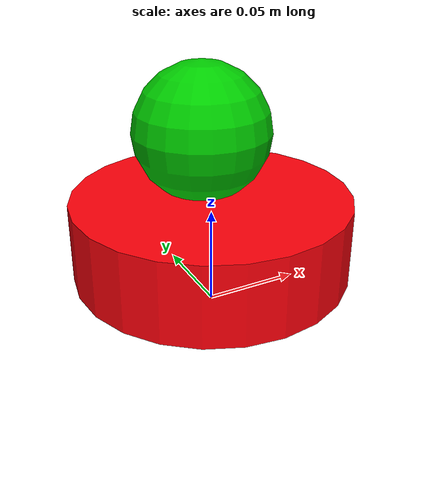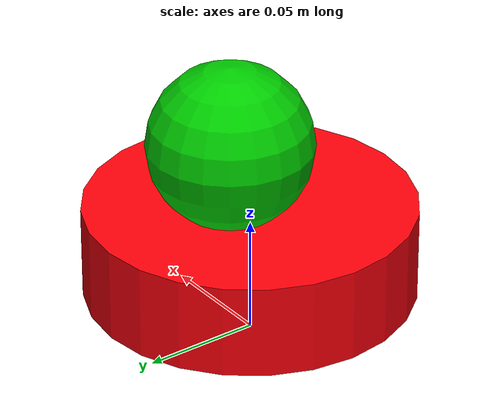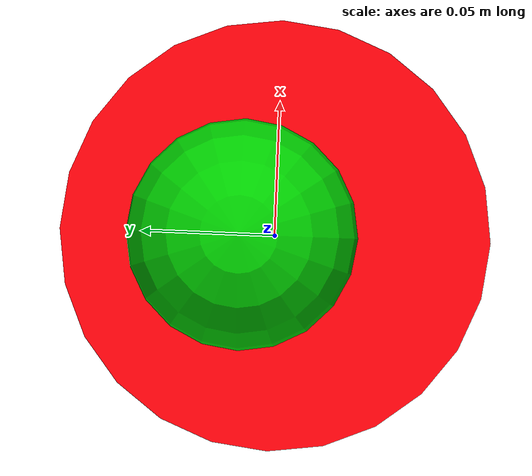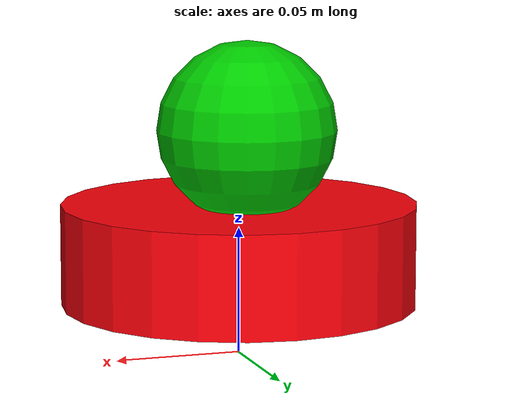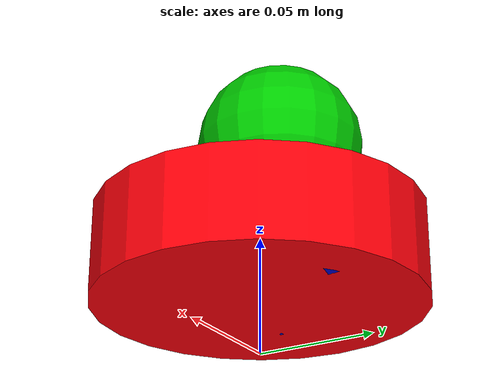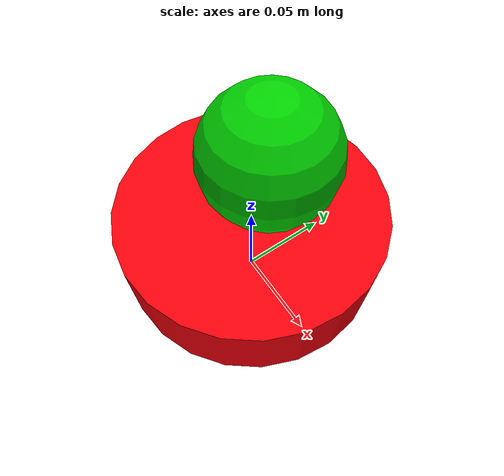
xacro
<?xml version="1.0"?>
<!-- Revolute-Revolute Manipulator -->
<robot name="ptz_camera" xmlns:xacro="http://www.ros.org/wiki/xacro">

  <xacro:property name="mult" value="1" /> <!-- test -->

  <!-- Constants for robot dimensions -->
  <xacro:property name="PI" value="3.1415926535897931"/>
  <xacro:property name="mass" value="${1*mult*mult*mult}" /> <!-- arbitrary value for mass -->
  <xacro:property name="damping" value="0.7" /> <!-- arbitrary value for mass -->

  <xacro:property name="frame_height_m" value="0.04" />
  <xacro:property name="frame_radius_m" value="0.07" />
  <xacro:property name="head_height_m" value="0.02" />
  <xacro:property name="head_radius_m" value="0.04" />
  <xacro:property name="eye_radius_m" value="0.035" />
  <xacro:property name="camera_width_m" value="0.01" />

  <xacro:property name="frame_height" value="${frame_height_m*mult}" />
  <xacro:property name="frame_radius" value="${frame_radius_m*mult}" />
  <xacro:property name="head_height" value="${head_height_m*mult}" />
  <xacro:property name="head_radius" value="${head_radius_m*mult}" />
  <xacro:property name="eye_radius" value="${eye_radius_m*mult}" />
  <xacro:property name="camera_width" value="${camera_width_m*mult}" />

  <xacro:property name="pan_angle" value="${(1-170/180)*PI}" /> <!-- head to body angle -->

  <xacro:property name="tilt_angle" value="${PI*(150/180)}" /> <!-- eye to head angle -->

  <!-- Import all Gazebo-customization elements, including Gazebo colors -->
  <xacro:include filename="$(find ptz_camera_description)/urdf/ptz_camera.gazebo" />
  <!-- Import Rviz colors -->
  <xacro:include filename="$(find ptz_camera_description)/urdf/materials.xacro" />

  <!-- Used for fixing robot to Gazebo 'base_link' -->
  <link name="world"/>

  <joint name="fixed" type="fixed">
    <parent link="world"/>
    <child link="frame"/>
    <origin xyz="0 0 ${frame_height/2.0}" rpy="0 0 0"/>

  </joint>

  <!-- Base Link -->
  <link name="frame">
    <visual>
      <origin xyz="0 0 ${frame_height/2}" rpy="0 0 0"/>
      <geometry>
	<cylinder length="${frame_height}" radius="${frame_radius}"/>
      </geometry>
        <material name="">
          <color rgba="255 0 10 1.0"/>
        </material>
    </visual>

    <collision>
      <origin xyz="0 0 ${frame_height/2}" rpy="0 0 0"/>
      <geometry>
	<cylinder length="${frame_height}" radius="${frame_radius}"/>
      </geometry>
    </collision>

    <inertial>
      <origin xyz="0 0 ${frame_height/2}" rpy="0 0 0"/>
      <mass value="${mass}"/>
      <inertia
	  ixx="${mass / 12.0 * (3*frame_radius*frame_radius + frame_height*frame_height)}" ixy="0.0" ixz="0.0"
	  iyy="${mass / 12.0 * (3*frame_radius*frame_radius + frame_height*frame_height)}" iyz="0.0"
	  izz="${mass /  2.0 * (frame_radius*frame_radius)}"/>
    </inertial>
  </link>

  <!-- nec -->

  <joint name="nec_joint" type="continuous">
    <parent link="frame"/>
    <child link="head"/>
    <origin xyz="0 ${head_height/2} 0" rpy="0 0 0"/>
    <axis xyz="0 0 1"/>
    <dynamics damping="${damping}"/>
  </joint>

  <!-- head -->

  <link name="head">
    <visual>
      <origin xyz="0 0 ${head_height/2}" rpy="0 0 0"/>
      <geometry>
	<cylinder length="${head_height}" radius="${head_radius}"/>
      </geometry>
      <material name="blue"/>
    </visual>

    <collision>
      <origin xyz="0 0 ${head_height/2}" rpy="0 0 0"/>
      <geometry>
	<cylinder length="${head_height}" radius="${head_radius}"/>
      </geometry>
    </collision>

    <inertial>
      <origin xyz="0 0 ${head_height/2}" rpy="0 0 0"/>
      <mass value="${mass}"/>
      <inertia
	  ixx="${mass / 12.0 * (3*head_radius*head_radius + head_height*head_height)}" ixy="0.0" ixz="0.0"
	  iyy="${mass / 12.0 * (3*head_radius*head_radius + head_height*head_height)}" iyz="0.0"
	  izz="${mass /  2.0 * (head_radius*head_radius)}"/>
    </inertial>
  </link>

<!--eye -->

  <joint name="eye_joint" type="continuous">
    <parent link="head"/>
    <child link="eye"/>
    <origin xyz="0 0 ${eye_radius}" rpy="0 0 0"/>
    <axis xyz="0 1 0"/>
    <dynamics damping="${damping}"/>
  </joint>

  <link name="eye">
    <visual>
    <origin xyz="0 0 ${eye_radius}" rpy="0 0 0"/>
      <geometry>
	<sphere  radius="${eye_radius}"/>
      </geometry>
      <material name="green"/>
    </visual>

    <collision>
    <origin xyz="0 0 ${eye_radius}" rpy="0 0 0"/>
      <geometry>
	<sphere  radius="${eye_radius}"/>
      </geometry>
    </collision>

    <inertial>
    <origin xyz="0 0 ${eye_radius}" rpy="0 0 0"/>
      <mass value="${mass}"/>
      <inertia
	  ixx="${mass * 2.0 /  5.0 * (eye_radius*eye_radius)}" ixy="0.0" ixz="0.0"
	  iyy="${mass * 2.0 /  5.0 * (eye_radius*eye_radius)}" iyz="0.0"
	  izz="${mass * 2.0 /  5.0 * (eye_radius*eye_radius)}"/>
    </inertial>
  </link>

<!--camera -->

  <joint name="camera_joint" type="fixed">
    <parent link="eye"/>
    <child link="camera"/>
    <origin xyz=" 0 ${camera_width/2} 0" rpy="0 0 0"/>
    <axis xyz="0 1 0"/>
    <dynamics damping="${damping}"/>
  </joint>

  <link name="camera">
    <visual>
      <origin xyz="0 0 ${camera_width/2}" rpy="0 0 0"/>
      <geometry>
	<box size="${camera_width} ${camera_width} ${camera_width}"/>
      </geometry>
        <material name="">
            <color rgba="100 100 0 1.0"/>
        </material>
    </visual>

    <collision>
     <origin xyz="0 0 ${camera_width/2}" rpy="0 0 0"/>
      <geometry>
	<box size="${camera_width} ${camera_width} ${camera_width}"/>
      </geometry>
    </collision>

    <inertial>
     <origin xyz="0 0 ${camera_width/2}" rpy="0 0 0"/>
      <mass value="${mass}"/>
      <inertia
	  ixx="${mass / 6.0 * (camera_width*camera_width)}" ixy="0.0" ixz="0.0"
	  iyy="${mass / 6.0 * (camera_width*camera_width)}" iyz="0.0"
	  izz="${mass / 6.0 * (camera_width*camera_width)}"/>
    </inertial>

  </link>

  <transmission name="tran1">
    <type>transmission_interface/SimpleTransmission</type>
    <joint name="nec_joint">
      <hardwareInterface>hardware_interface/EffortJointInterface</hardwareInterface>
    </joint>
    <actuator name="motor1">
      <hardwareInterface>hardware_interface/EffortJointInterface</hardwareInterface>
      <mechanicalReduction>1</mechanicalReduction>
    </actuator>
  </transmission>

</robot>

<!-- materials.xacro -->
<robot>

  <material name="black">
    <color rgba="0 0 0 1.0"/>
  </material>

  <material name="blue">
    <color rgba="0 0 204 1.0"/>
  </material>

  <material name="green">
    <color rgba="0 204 0 1.0"/>
  </material>

  <material name="grey">
    <color rgba="51 51 51 1.0"/>
  </material>

  <material name="orange">
    <color rgba="255 108 10 1.0"/>
  </material>

  <material name="brown">
    <color rgba="222 207 195 1.0"/>
  </material>

  <material name="red">
    <color rgba="204 0.0 0.0 1.0"/>
  </material>

  <material name="white">
    <color rgba="255 255 255 1.0"/>
  </material>

</robot>
